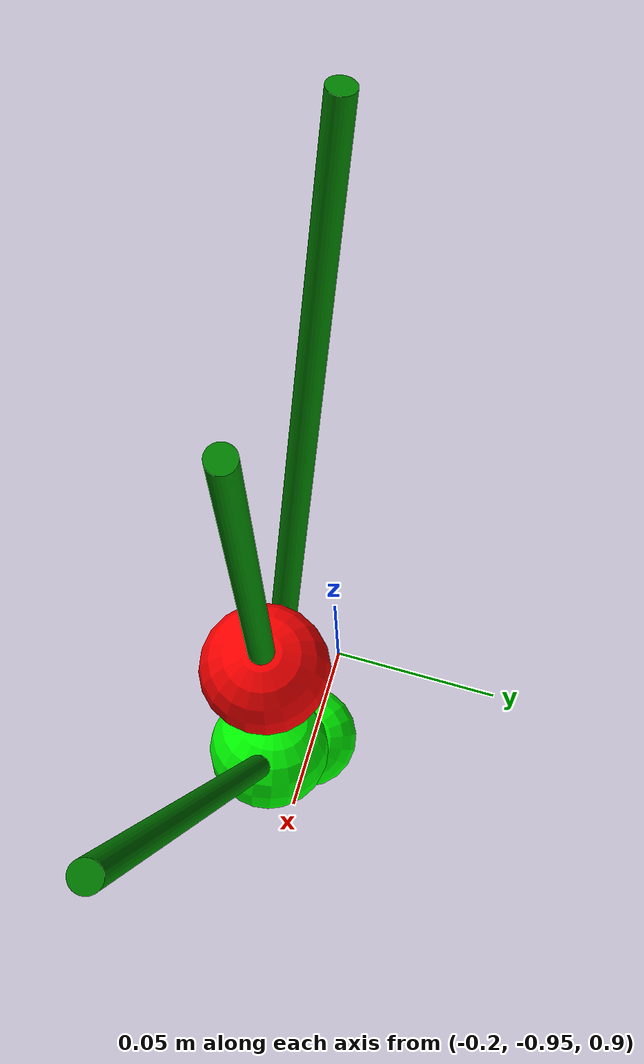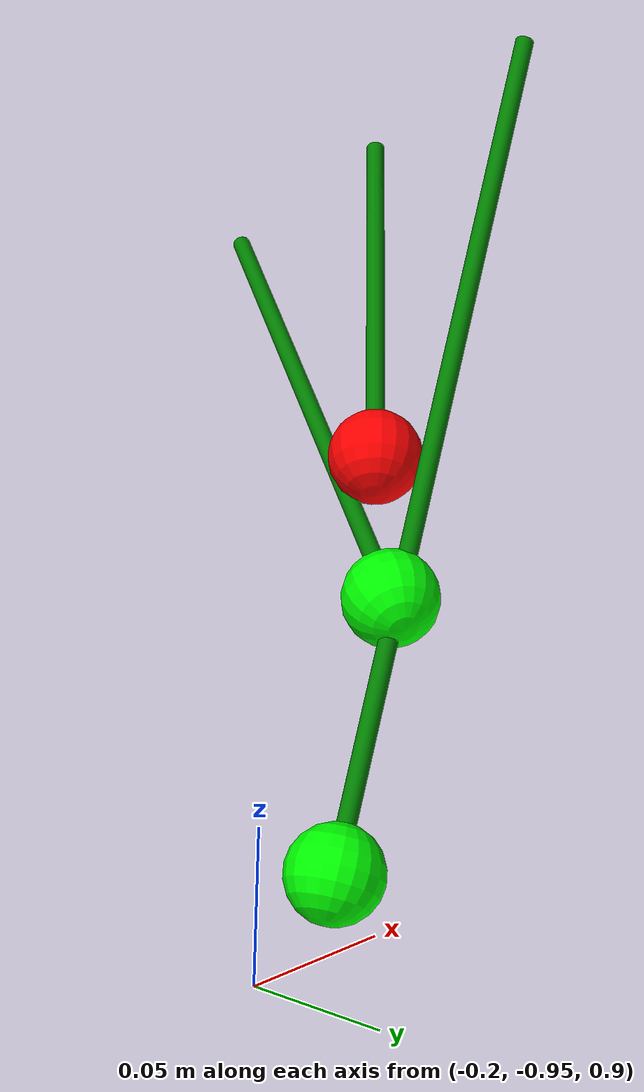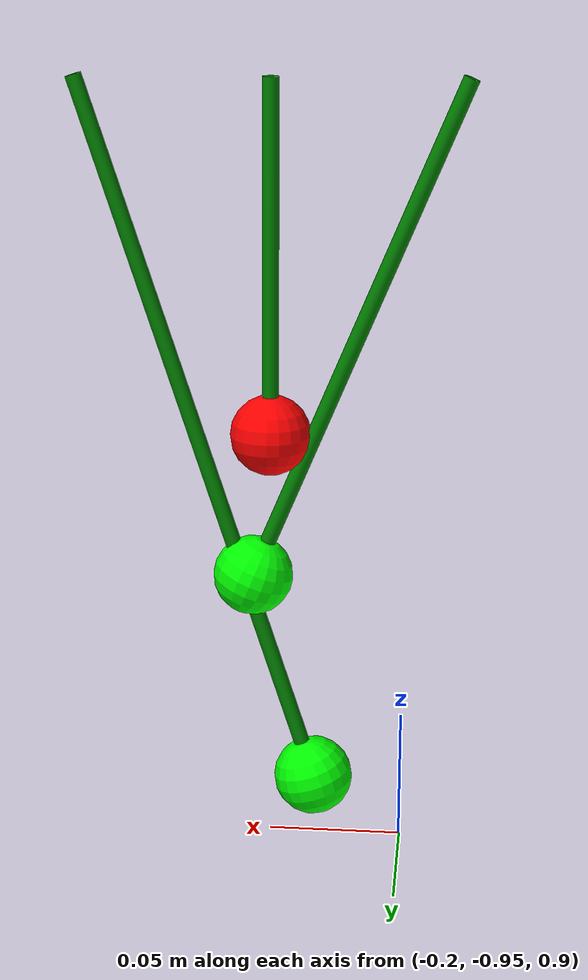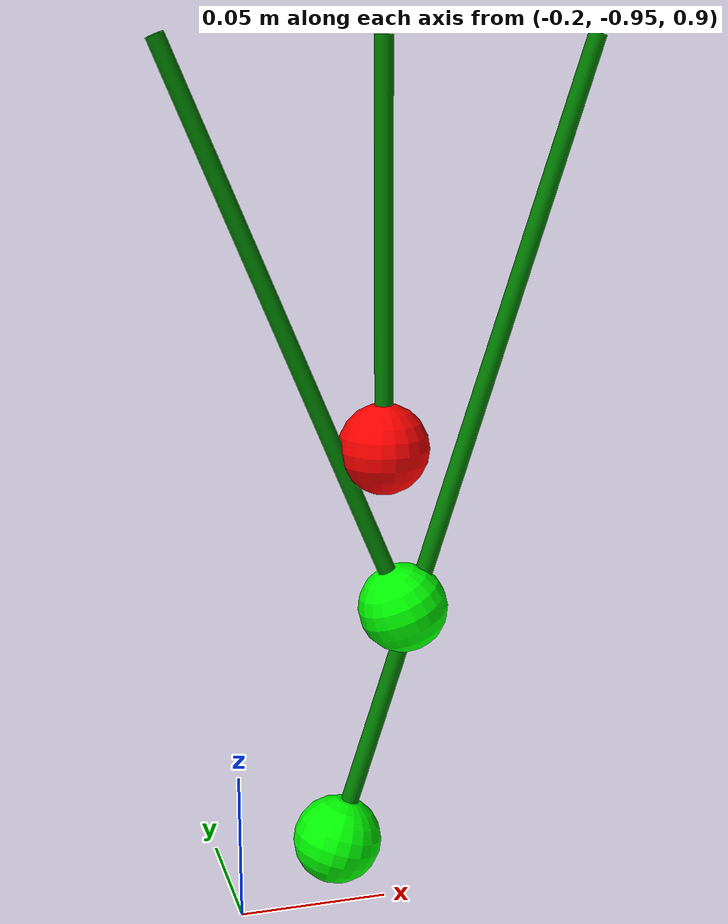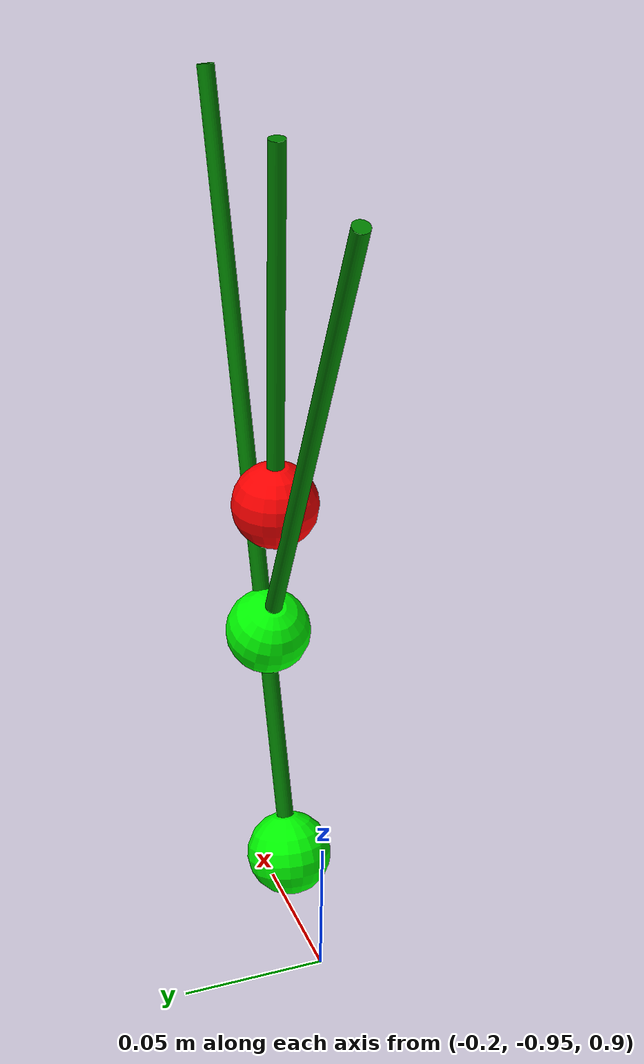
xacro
<?xml version="1.0"?>
<robot xmlns:xacro="http://www.ros.org/wiki/xacro" name="straw_cluster8">

<xacro:arg name="tf_prefix" default=""/>

<link name="world"/>

<xacro:arg name="parent_cluster" default="world"/>

<!-- Robot21 -->
<link name="$(arg tf_prefix)/yball_stem81">
  <gravity>1</gravity>
  <inertial>
    <origin xyz="0 0 0" rpy="0 0 0"/>
    <mass value=".00001"/>
    <inertia ixx="0.0000004" ixy="0.0" ixz="0.0" iyy="0.0000004" iyz="0.0" izz="0.0000004" />
  </inertial>
  <visual><geometry><sphere radius=".00001"/></geometry></visual>
  <collision><geometry><sphere radius=".00001"/></geometry></collision>
</link>
<gazebo reference="$(arg tf_prefix)/yball_stem81">
  <material>Gazebo/Green</material>
</gazebo>

<joint name="$(arg tf_prefix)/stem81y" type="revolute" >
  <parent link="$(arg parent_cluster)" />
  <child link="$(arg tf_prefix)/yball_stem81" />
  <origin xyz="-0.15 -0.95 1.19" rpy="0 0 0"/>
  <axis xyz="0 1 0" />
  <dynamics damping="0.0001" friction="0.0002"/>
  <limit
      lower="-${pi}" upper="${pi}"
      effort="0.1" velocity="1" />
</joint>

<link name="$(arg tf_prefix)/xball_stem81">
  <gravity>1</gravity>
  <inertial>
    <origin xyz="0 0 0" rpy="0 0 0"/>
    <mass value=".00001"/>
    <inertia ixx="0.0000004" ixy="0.0" ixz="0.0" iyy="0.0000004" iyz="0.0" izz="0.0000004" />
  </inertial>
  <visual><geometry><sphere radius=".00001"/></geometry></visual>
  <collision><geometry><sphere radius=".00001"/></geometry></collision>
</link>
<gazebo reference="$(arg tf_prefix)/xball_stem81">
  <material>Gazebo/Green</material>
</gazebo>

<joint name="$(arg tf_prefix)/stem81x" type="revolute" >
  <parent link="$(arg tf_prefix)/yball_stem81"/>
  <child link="$(arg tf_prefix)/xball_stem81"/>
  <origin xyz="0 0 0" rpy="0 0 0"/>
  <axis xyz="1 0 0" />
  <dynamics damping="0.0001" friction="0.0002" />
  <limit
      lower="-${pi}" upper="${pi}"
      effort="0.1" velocity="0.1" />
</joint>

<!-- Define stem of straw81 -->
<link name="$(arg tf_prefix)/stem81">
  <gravity>1</gravity>
  <inertial>
    <origin xyz="0 0 0" rpy="0 0 0"/>
    <mass value="0.0002"/>
    <inertia
      ixx="0.0000000005" ixy="0.0" ixz="0.0"
      iyy="0.0000000005" iyz="0.0"
      izz="0.0000000005"/>
  </inertial>
  <collision>
    <geometry>
    <cylinder length="0.13" radius="0.003"/>
    </geometry>
    <material name="green">
      <color rgba="0 ${128/255} 0 1"/>
    </material>
    <origin xyz="0 0 -0.065" rpy="0 0 0"/>
  </collision>
  <visual>
    <geometry>
    <cylinder length="0.13" radius="0.003"/>
    </geometry>
    <material name="green">
      <color rgba="0 ${128/255} 0 1"/>
    </material>
    <origin xyz="0 0 -0.065" rpy="0 0 0"/>
  </visual>
</link>
<gazebo reference="$(arg tf_prefix)/stem81">
  <mu1>0.01</mu1>
  <mu2>0.01</mu2>
  <selfCollide>true</selfCollide>
  <maxContacts>2</maxContacts>
  <minDepth>0</minDepth>
  <maxVel>0.01</maxVel>
  <kp  value="1" />
  <kd  value="0.1" />
  <material>Gazebo/Green</material>
</gazebo>

<joint name="$(arg tf_prefix)/xball_stem81" type="fixed">
  <parent link="$(arg tf_prefix)/xball_stem81"/>
  <child link="$(arg tf_prefix)/stem81"/>
  <origin xyz="0 0 0" rpy="0 0 0"/>
</joint>

<!-- Define straw81 -->
<link name="$(arg tf_prefix)/straw81">
  <gravity>1</gravity>
  <inertial>
    <origin xyz="0 0 0" rpy="0 0 0"/>
    <mass value="0.0002"/>
    <inertia
      ixx="0.00000018" ixy="0.0" ixz="0.0"
      iyy="0.00000018" iyz="0.0"
      izz="0.00000018"/>
  </inertial>
  <collision>
    <geometry>
      <sphere radius="0.015"/>
    </geometry>
  </collision>
  <visual>
    <geometry>
    <sphere radius="0.015"/>
    </geometry>
    <material name="Red">
      <color rgba="1 0 0 1"/>
    </material>
  </visual>
</link>
<gazebo reference="$(arg tf_prefix)/straw81">
  <mu1>0.01</mu1>
  <mu2>0.01</mu2>
  <selfCollide>true</selfCollide>
  <maxContacts>2</maxContacts>
  <minDepth>0</minDepth>
  <maxVel>0.01</maxVel>
  <kp  value="1000" />
  <kd  value="1" />
  <material>Gazebo/Red</material>
</gazebo>

<joint name="$(arg tf_prefix)/straw1_stem81" type="revolute">
  <parent link="$(arg tf_prefix)/stem81"/>
  <child link="$(arg tf_prefix)/straw81"/>
  <origin xyz="0 0 -0.13" rpy="0 0 0"/>
  <axis xyz="0 1 0" />
  <dynamics damping="0.0000001" friction="0.0000002"/>
  <limit
      lower="-${pi}" upper="${pi}"
      effort="0.01" velocity="0.1" />
</joint>

<!-- Robot22 -->
<link name="$(arg tf_prefix)/yball_stem82">
  <gravity>1</gravity>
  <inertial>
    <origin xyz="0 0 0" rpy="0 0 0"/>
    <mass value=".00001"/>
    <inertia ixx="0.00001" ixy="0.0" ixz="0.0" iyy="0.00001" iyz="0.0" izz="0.00001" />
  </inertial>
  <visual><geometry><sphere radius=".00001"/></geometry></visual>
  <collision><geometry><sphere radius=".00001"/></geometry></collision>
</link>
<gazebo reference="$(arg tf_prefix)/yball_stem82">
  <material>Gazebo/Green</material>
</gazebo>

<joint name="$(arg tf_prefix)/stem82y" type="revolute" >
  <parent link="$(arg parent_cluster)" />
  <child link="$(arg tf_prefix)/yball_stem82" />
  <origin xyz="-0.08 -0.95 1.19" rpy="0 ${pi/10} 0"/>
  <axis xyz="0 1 0" />
  <dynamics damping="0.001" friction="0.002" />
  <limit
      lower="-${pi}" upper="${pi}"
      effort="100" velocity="1" />
</joint>

<link name="$(arg tf_prefix)/xball_stem82">
  <gravity>1</gravity>
  <inertial>
    <origin xyz="0 0 0" rpy="0 0 0"/>
    <mass value=".00001"/>
    <inertia ixx="0.00001" ixy="0.0" ixz="0.0" iyy="0.00001" iyz="0.0" izz="0.00001" />
  </inertial>
  <visual><geometry><sphere radius=".00001"/></geometry></visual>
  <collision><geometry><sphere radius=".00001"/></geometry></collision>
</link>
<gazebo reference="$(arg tf_prefix)/xball_stem82">
  <material>Gazebo/Green</material>
</gazebo>

<joint name="$(arg tf_prefix)/stem82x" type="revolute" >
  <parent link="$(arg tf_prefix)/yball_stem82"/>
  <child link="$(arg tf_prefix)/xball_stem82"/>
  <origin xyz="0 0 0" rpy="0 0 0"/>
  <axis xyz="1 0 0" />
  <dynamics damping="0.001" friction="0.002" />
  <limit
      lower="-${pi}" upper="${pi}"
      effort="100" velocity="1" />
</joint>

<!-- Define stem of straw82 -->
<link name="$(arg tf_prefix)/stem82">
  <gravity>1</gravity>
  <inertial>
    <origin xyz="0 0 0" rpy="0 0 0"/>
    <mass value="0.0001"/>
    <inertia
      ixx="0.0000000005" ixy="0.0" ixz="0.0"
      iyy="0.0000000005" iyz="0.0"
      izz="0.0000000005"/>
  </inertial>
  <collision>
    <geometry>
    <cylinder length="0.28" radius="0.003"/> <!-- was 0.15 -->
    </geometry>
    <material name="green">
      <color rgba="0 ${128/255} 0 1"/>
    </material>
    <origin xyz="0 0 -0.14" rpy="0 0 0"/>
  </collision>
  <visual>
    <geometry>
    <cylinder length="0.28" radius="0.003"/>
    </geometry>
    <material name="green">
      <color rgba="0 ${128/255} 0 1"/>
    </material>
    <origin xyz="0 0 -0.14" rpy="0 0 0"/>
  </visual>
</link>
<gazebo reference="$(arg tf_prefix)/stem82">
  <mu1>0.01</mu1>
  <mu2>0.01</mu2>
  <selfCollide>true</selfCollide>
  <maxContacts>2</maxContacts>
  <minDepth>0</minDepth>
  <maxVel>0.01</maxVel>
  <kp value="1000" />
  <kd value="1" />
  <material>Gazebo/Green</material>
</gazebo>

<joint name="$(arg tf_prefix)/xball_stem82" type="fixed">
  <parent link="$(arg tf_prefix)/xball_stem82"/>
  <child link="$(arg tf_prefix)/stem82"/>
  <origin xyz="0 0 0" rpy="0 0 0"/>
</joint>

<!-- Define straw82 -->
<link name="$(arg tf_prefix)/straw82">
  <gravity>1</gravity>
  <inertial>
    <origin xyz="0 0 0" rpy="0 0 0"/>
    <mass value="0.0002"/>
    <inertia
      ixx="0.00000018" ixy="0.0" ixz="0.0"
      iyy="0.00000018" iyz="0.0"
      izz="0.00000018"/>
  </inertial>
  <collision>
    <geometry>
      <sphere radius="0.015"/>
    </geometry>
  </collision>
  <visual>
    <geometry>
    <sphere radius="0.015"/>
    </geometry>
    <material name="green">
      <color rgba="0 1 0 1"/>
    </material>
  </visual>
</link>
<gazebo reference="$(arg tf_prefix)/straw82">
  <mu1>0.01</mu1>
  <mu2>0.01</mu2>
  <selfCollide>true</selfCollide>
  <maxContacts>2</maxContacts>
  <minDepth>0</minDepth>
  <maxVel>0.01</maxVel>
  <kp  value="1000" />
  <kd  value="1" />
  <material>Gazebo/Green</material>
</gazebo>

<joint name="$(arg tf_prefix)/straw82_stem82" type="revolute">
  <parent link="$(arg tf_prefix)/stem82"/>
  <child link="$(arg tf_prefix)/straw82"/>
  <origin xyz="0 0 -0.28" rpy="0 0 0"/>
  <axis xyz="0 1 0" />
  <dynamics damping="0.0000001" friction="0.0000002"/>
  <limit
      lower="-${pi}" upper="${pi}"
      effort="1" velocity="0.1" />
</joint>

<!-- Robot 23 -->
<link name="$(arg tf_prefix)/yball_stem83">
  <gravity>1</gravity>
  <inertial>
    <origin xyz="0 0 0" rpy="0 0 0"/>
    <mass value=".00001"/>
    <inertia ixx="0.00001" ixy="0.0" ixz="0.0" iyy="0.00001" iyz="0.0" izz="0.00001" />
  </inertial>
  <visual><geometry><sphere radius=".00001"/></geometry></visual>
  <collision><geometry><sphere radius=".00001"/></geometry></collision>
</link>
<gazebo reference="$(arg tf_prefix)/yball_stem83">
  <material>Gazebo/Green</material>
</gazebo>

<joint name="$(arg tf_prefix)/stem83y" type="revolute" >
  <parent link="$(arg parent_cluster)" />
  <child link="$(arg tf_prefix)/yball_stem83" />
  <origin xyz="-0.22 -0.95 1.19" rpy="0 ${-pi/8} 0"/>
  <axis xyz="0 1 0" />
  <dynamics damping="0.0001" friction="0.0002" />
  <limit
      lower="-${pi}" upper="${pi}"
      effort="10" velocity="1" />
</joint>

<link name="$(arg tf_prefix)/xball_stem83">
  <gravity>1</gravity>
  <inertial>
    <origin xyz="0 0 0" rpy="0 0 0"/>
    <mass value=".00001"/>
    <inertia ixx="0.00001" ixy="0.0" ixz="0.0" iyy="0.00001" iyz="0.0" izz="0.00001" />
  </inertial>
  <visual><geometry><sphere radius=".00001"/></geometry></visual>
  <collision><geometry><sphere radius=".00001"/></geometry></collision>
</link>
<gazebo reference="$(arg tf_prefix)/xball_stem83">
  <material>Gazebo/Green</material>
</gazebo>

<joint name="$(arg tf_prefix)/stem83x" type="revolute" >
  <parent link="$(arg tf_prefix)/yball_stem83"/>
  <child link="$(arg tf_prefix)/xball_stem83"/>
  <origin xyz="0 0 0" rpy="0 0 0"/>
  <axis xyz="1 0 0" />
  <dynamics damping="0.0001" friction="0.0002" />
  <limit
      lower="-${pi}" upper="${pi}"
      effort="10" velocity="1" />
</joint>

<!-- Define stem of straw83 -->
<link name="$(arg tf_prefix)/stem83">
  <gravity>1</gravity>
  <inertial>
    <origin xyz="0 0 0" rpy="0 0 0"/>
    <mass value="0.0001"/>
    <inertia
      ixx="0.0000000005" ixy="0.0" ixz="0.0"
      iyy="0.0000000005" iyz="0.0"
      izz="0.0000000005"/>
  </inertial>
  <collision>
    <geometry>
    <cylinder length="0.2" radius="0.003"/> <!-- was 0.15 -->
    </geometry>
    <material name="green">
      <color rgba="0 ${128/255} 0 1"/>
    </material>
    <origin xyz="0 0 -0.1" rpy="0 0 0"/>
  </collision>
  <visual>
    <geometry>
    <cylinder length="0.2" radius="0.003"/>
    </geometry>
    <material name="green">
      <color rgba="0 ${128/255} 0 1"/>
    </material>
    <origin xyz="0 0 -0.1" rpy="0 0 0"/>
  </visual>
</link>
<gazebo reference="$(arg tf_prefix)/stem83">
  <mu1>0.01</mu1>
  <mu2>0.01</mu2>
  <selfCollide>true</selfCollide>
  <maxContacts>2</maxContacts>
  <minDepth>0</minDepth>
  <maxVel>0.01</maxVel>
  <kp  value="10" />
  <kd  value="1" />
  <material>Gazebo/Green</material>
</gazebo>

<joint name="$(arg tf_prefix)/xball_stem83" type="fixed">
  <parent link="$(arg tf_prefix)/xball_stem83"/>
  <child link="$(arg tf_prefix)/stem83"/>
  <origin xyz="0 0 0" rpy="0 0 0"/>
</joint>

<!-- Define straw83 -->
<link name="$(arg tf_prefix)/straw83">
  <gravity>1</gravity>
  <inertial>
    <origin xyz="0 0 0" rpy="0 0 0"/>
    <mass value="0.0002"/>
    <inertia
      ixx="0.00000018" ixy="0.0" ixz="0.0"
      iyy="0.00000018" iyz="0.0"
      izz="0.00000018"/>
  </inertial>
  <collision>
    <geometry>
      <sphere radius="0.015"/>
    </geometry>
  </collision>
  <visual>
    <geometry>
    <sphere radius="0.015"/>
    </geometry>
    <material name="green">
      <color rgba="0 1 0 1"/>
    </material>
  </visual>
</link>
<gazebo reference="$(arg tf_prefix)/straw83">
  <mu1>0.01</mu1>
  <mu2>0.01</mu2>
  <selfCollide>true</selfCollide>
  <maxContacts>2</maxContacts>
  <minDepth>0</minDepth>
  <maxVel>0.01</maxVel>
  <kp  value="10" />
  <kd  value="1" />
  <material>Gazebo/Green</material>
</gazebo>

<joint name="$(arg tf_prefix)/straw83_stem83" type="revolute">
  <parent link="$(arg tf_prefix)/stem83"/>
  <child link="$(arg tf_prefix)/straw83"/>
  <origin xyz="0 0 -0.2" rpy="0 0 0"/>
  <axis xyz="0 1 0" />
  <dynamics damping="0.0000001" friction="0.0000002"/>
  <limit
      lower="-${pi}" upper="${pi}"
      effort="0.01" velocity="0.1" />
</joint>

<gazebo>
  <plugin name="gazebo_ros_control" filename="libgazebo_ros_control.so">
    <robotSimType>gazebo_ros_control/DefaultRobotHWSim</robotSimType>
    <legacyModeNS>true</legacyModeNS>
    <robotNamespace>/straw_cluster8</robotNamespace>
  </plugin>
</gazebo>

</robot>
